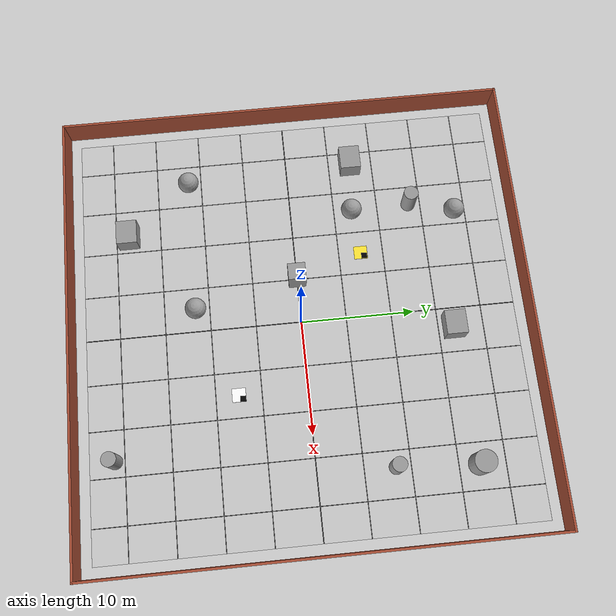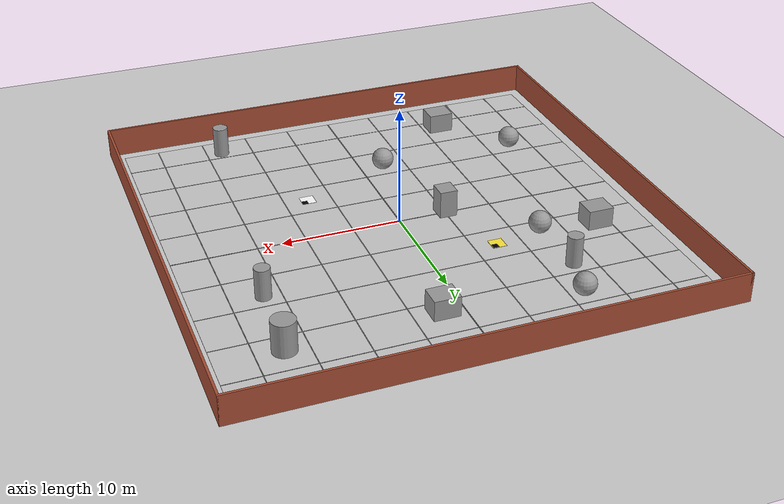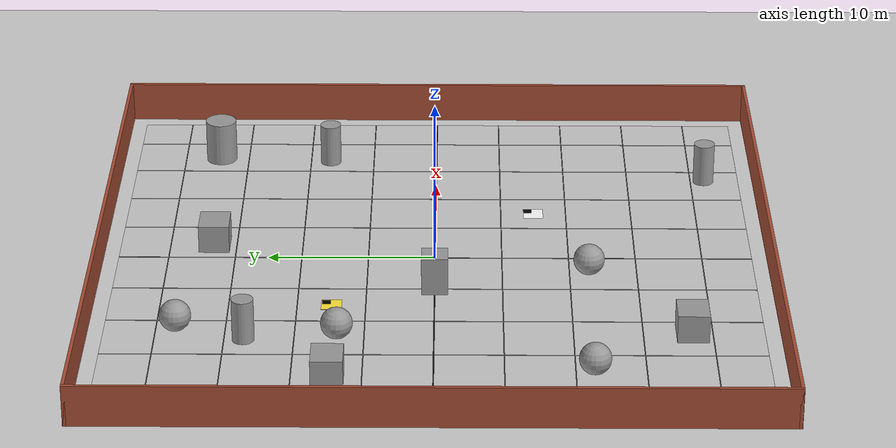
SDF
<sdf version="1.7">
 <world name="default">
  <light name="sun" type="directional">
   <cast_shadows>0</cast_shadows>
   <pose>0 0 10 0 -0 0</pose>
   <diffuse>0.8 0.8 0.8 1</diffuse>
   <specular>0.2 0.2 0.2 1</specular>
   <direction>-0.5 0.1 -0.9</direction>
   <attenuation><range>10</range></attenuation>
   <spot><inner_angle>0</inner_angle><outer_angle>0</outer_angle><falloff>0</falloff></spot>
  </light>
  <physics name="default_physics" default="1" type="ode">
   <max_step_size>0.004</max_step_size>
   <real_time_factor>1</real_time_factor>
   <real_time_update_rate>250</real_time_update_rate>
  </physics>
  <scene><ambient>0.4 0.4 0.4 1</ambient><background>0.7 0.7 0.7 1</background><shadows>0</shadows></scene>
  <gravity>0 0 -9.8</gravity>
  <model name="ground_plane">
   <static>1</static>
   <link name="link">
    <collision name="collision">
     <geometry><plane><normal>0 0 1</normal><size>200 200</size></plane></geometry>
    </collision>
    <visual name="visual">
     <cast_shadows>0</cast_shadows>
     <geometry><plane><normal>0 0 1</normal><size>200 200</size></plane></geometry>
     <material>
      <script><uri>file://media/materials/scripts/gazebo.material</uri><name>Gazebo/Grey</name></script>
     </material>
    </visual>
   </link>
  </model>
  <model name="vins_floor">
   <static>1</static>
   <pose>0 0 0.015 0 -0 0</pose>
   <link name="link">
    <collision name="collision"><geometry><box><size>38 38 0.02</size></box></geometry></collision>
    <visual name="visual">
     <cast_shadows>0</cast_shadows>
     <geometry><box><size>38 38 0.02</size></box></geometry>
     <material>
      <ambient>0.82 0.82 0.82 1</ambient>
      <diffuse>0.78 0.78 0.78 1</diffuse>
      <specular>0.02 0.02 0.02 1</specular>
     </material>
    </visual>
   </link>
  </model>
  <model name="floor_grid_lines">
   <static>1</static>
   <link name="xline_y_-16">
    <pose>0 -16 0.03 0 -0 0</pose>
    <collision name="c"><geometry><box><size>38 0.06 0.01</size></box></geometry></collision>
    <visual name="v">
     <geometry><box><size>38 0.06 0.01</size></box></geometry>
     <material><ambient>0.05 0.05 0.05 1</ambient><diffuse>0.05 0.05 0.05 1</diffuse></material>
    </visual>
   </link>
   <link name="xline_y_-12">
    <pose>0 -12 0.03 0 -0 0</pose>
    <collision name="c"><geometry><box><size>38 0.06 0.01</size></box></geometry></collision>
    <visual name="v">
     <geometry><box><size>38 0.06 0.01</size></box></geometry>
     <material><ambient>0.05 0.05 0.05 1</ambient><diffuse>0.05 0.05 0.05 1</diffuse></material>
    </visual>
   </link>
   <link name="xline_y_-8">
    <pose>0 -8 0.03 0 -0 0</pose>
    <collision name="c"><geometry><box><size>38 0.06 0.01</size></box></geometry></collision>
    <visual name="v">
     <geometry><box><size>38 0.06 0.01</size></box></geometry>
     <material><ambient>0.05 0.05 0.05 1</ambient><diffuse>0.05 0.05 0.05 1</diffuse></material>
    </visual>
   </link>
   <link name="xline_y_-4">
    <pose>0 -4 0.03 0 -0 0</pose>
    <collision name="c"><geometry><box><size>38 0.06 0.01</size></box></geometry></collision>
    <visual name="v">
     <geometry><box><size>38 0.06 0.01</size></box></geometry>
     <material><ambient>0.05 0.05 0.05 1</ambient><diffuse>0.05 0.05 0.05 1</diffuse></material>
    </visual>
   </link>
   <link name="xline_y_0">
    <pose>0 0 0.03 0 -0 0</pose>
    <collision name="c"><geometry><box><size>38 0.08 0.012</size></box></geometry></collision>
    <visual name="v">
     <geometry><box><size>38 0.08 0.012</size></box></geometry>
     <material><ambient>0.02 0.02 0.02 1</ambient><diffuse>0.02 0.02 0.02 1</diffuse></material>
    </visual>
   </link>
   <link name="xline_y_4">
    <pose>0 4 0.03 0 -0 0</pose>
    <collision name="c"><geometry><box><size>38 0.06 0.01</size></box></geometry></collision>
    <visual name="v">
     <geometry><box><size>38 0.06 0.01</size></box></geometry>
     <material><ambient>0.05 0.05 0.05 1</ambient><diffuse>0.05 0.05 0.05 1</diffuse></material>
    </visual>
   </link>
   <link name="xline_y_8">
    <pose>0 8 0.03 0 -0 0</pose>
    <collision name="c"><geometry><box><size>38 0.06 0.01</size></box></geometry></collision>
    <visual name="v">
     <geometry><box><size>38 0.06 0.01</size></box></geometry>
     <material><ambient>0.05 0.05 0.05 1</ambient><diffuse>0.05 0.05 0.05 1</diffuse></material>
    </visual>
   </link>
   <link name="xline_y_12">
    <pose>0 12 0.03 0 -0 0</pose>
    <collision name="c"><geometry><box><size>38 0.06 0.01</size></box></geometry></collision>
    <visual name="v">
     <geometry><box><size>38 0.06 0.01</size></box></geometry>
     <material><ambient>0.05 0.05 0.05 1</ambient><diffuse>0.05 0.05 0.05 1</diffuse></material>
    </visual>
   </link>
   <link name="xline_y_16">
    <pose>0 16 0.03 0 -0 0</pose>
    <collision name="c"><geometry><box><size>38 0.06 0.01</size></box></geometry></collision>
    <visual name="v">
     <geometry><box><size>38 0.06 0.01</size></box></geometry>
     <material><ambient>0.05 0.05 0.05 1</ambient><diffuse>0.05 0.05 0.05 1</diffuse></material>
    </visual>
   </link>
   <link name="yline_x_-16">
    <pose>-16 0 0.03 0 -0 0</pose>
    <collision name="c"><geometry><box><size>0.06 38 0.01</size></box></geometry></collision>
    <visual name="v">
     <geometry><box><size>0.06 38 0.01</size></box></geometry>
     <material><ambient>0.05 0.05 0.05 1</ambient><diffuse>0.05 0.05 0.05 1</diffuse></material>
    </visual>
   </link>
   <link name="yline_x_-12">
    <pose>-12 0 0.03 0 -0 0</pose>
    <collision name="c"><geometry><box><size>0.06 38 0.01</size></box></geometry></collision>
    <visual name="v">
     <geometry><box><size>0.06 38 0.01</size></box></geometry>
     <material><ambient>0.05 0.05 0.05 1</ambient><diffuse>0.05 0.05 0.05 1</diffuse></material>
    </visual>
   </link>
   <link name="yline_x_-8">
    <pose>-8 0 0.03 0 -0 0</pose>
    <collision name="c"><geometry><box><size>0.06 38 0.01</size></box></geometry></collision>
    <visual name="v">
     <geometry><box><size>0.06 38 0.01</size></box></geometry>
     <material><ambient>0.05 0.05 0.05 1</ambient><diffuse>0.05 0.05 0.05 1</diffuse></material>
    </visual>
   </link>
   <link name="yline_x_-4">
    <pose>-4 0 0.03 0 -0 0</pose>
    <collision name="c"><geometry><box><size>0.06 38 0.01</size></box></geometry></collision>
    <visual name="v">
     <geometry><box><size>0.06 38 0.01</size></box></geometry>
     <material><ambient>0.05 0.05 0.05 1</ambient><diffuse>0.05 0.05 0.05 1</diffuse></material>
    </visual>
   </link>
   <link name="yline_x_0">
    <pose>0 0 0.03 0 -0 0</pose>
    <collision name="c"><geometry><box><size>0.08 38 0.012</size></box></geometry></collision>
    <visual name="v">
     <geometry><box><size>0.08 38 0.012</size></box></geometry>
     <material><ambient>0.02 0.02 0.02 1</ambient><diffuse>0.02 0.02 0.02 1</diffuse></material>
    </visual>
   </link>
   <link name="yline_x_4">
    <pose>4 0 0.03 0 -0 0</pose>
    <collision name="c"><geometry><box><size>0.06 38 0.01</size></box></geometry></collision>
    <visual name="v">
     <geometry><box><size>0.06 38 0.01</size></box></geometry>
     <material><ambient>0.05 0.05 0.05 1</ambient><diffuse>0.05 0.05 0.05 1</diffuse></material>
    </visual>
   </link>
   <link name="yline_x_8">
    <pose>8 0 0.03 0 -0 0</pose>
    <collision name="c"><geometry><box><size>0.06 38 0.01</size></box></geometry></collision>
    <visual name="v">
     <geometry><box><size>0.06 38 0.01</size></box></geometry>
     <material><ambient>0.05 0.05 0.05 1</ambient><diffuse>0.05 0.05 0.05 1</diffuse></material>
    </visual>
   </link>
   <link name="yline_x_12">
    <pose>12 0 0.03 0 -0 0</pose>
    <collision name="c"><geometry><box><size>0.06 38 0.01</size></box></geometry></collision>
    <visual name="v">
     <geometry><box><size>0.06 38 0.01</size></box></geometry>
     <material><ambient>0.05 0.05 0.05 1</ambient><diffuse>0.05 0.05 0.05 1</diffuse></material>
    </visual>
   </link>
   <link name="yline_x_16">
    <pose>16 0 0.03 0 -0 0</pose>
    <collision name="c"><geometry><box><size>0.06 38 0.01</size></box></geometry></collision>
    <visual name="v">
     <geometry><box><size>0.06 38 0.01</size></box></geometry>
     <material><ambient>0.05 0.05 0.05 1</ambient><diffuse>0.05 0.05 0.05 1</diffuse></material>
    </visual>
   </link>
  </model>
  <model name="floor_markers">
   <static>1</static>
   <link name="m1">
    <pose>6 -6 0.031 0 -0 0</pose>
    <collision name="c"><geometry><box><size>1.2 1.2 0.01</size></box></geometry></collision>
    <visual name="v">
     <geometry><box><size>1.2 1.2 0.01</size></box></geometry>
     <material><ambient>1 1 1 1</ambient><diffuse>1 1 1 1</diffuse></material>
    </visual>
   </link>
   <link name="m2">
    <pose>6.35 -5.65 0.032 0 -0 0</pose>
    <collision name="c"><geometry><box><size>0.5 0.5 0.01</size></box></geometry></collision>
    <visual name="v">
     <geometry><box><size>0.5 0.5 0.01</size></box></geometry>
     <material><ambient>0 0 0 1</ambient><diffuse>0 0 0 1</diffuse></material>
    </visual>
   </link>
   <link name="m3">
    <pose>-6 6 0.031 0 -0 0</pose>
    <collision name="c"><geometry><box><size>1.2 1.2 0.01</size></box></geometry></collision>
    <visual name="v">
     <geometry><box><size>1.2 1.2 0.01</size></box></geometry>
     <material><ambient>1 0.9 0.2 1</ambient><diffuse>1 0.9 0.2 1</diffuse></material>
    </visual>
   </link>
   <link name="m4">
    <pose>-5.7 6.3 0.032 0 -0 0</pose>
    <collision name="c"><geometry><box><size>0.5 0.5 0.01</size></box></geometry></collision>
    <visual name="v">
     <geometry><box><size>0.5 0.5 0.01</size></box></geometry>
     <material><ambient>0 0 0 1</ambient><diffuse>0 0 0 1</diffuse></material>
    </visual>
   </link>
  </model>
  <model name="walls">
   <static>1</static>
   <link name="wall_n">
    <pose>0 20 1.25 0 -0 0</pose>
    <collision name="collision"><geometry><box><size>40.2 0.2 2.5</size></box></geometry></collision>
    <visual name="visual">
     <geometry><box><size>40.2 0.2 2.5</size></box></geometry>
     <material>
      <script><uri>file://media/materials/scripts/gazebo.material</uri><name>Gazebo/Bricks</name></script>
     </material>
    </visual>
   </link>
   <link name="wall_s">
    <pose>0 -20 1.25 0 -0 0</pose>
    <collision name="collision"><geometry><box><size>40.2 0.2 2.5</size></box></geometry></collision>
    <visual name="visual">
     <geometry><box><size>40.2 0.2 2.5</size></box></geometry>
     <material>
      <script><uri>file://media/materials/scripts/gazebo.material</uri><name>Gazebo/Bricks</name></script>
     </material>
    </visual>
   </link>
   <link name="wall_e">
    <pose>20 0 1.25 0 -0 0</pose>
    <collision name="collision"><geometry><box><size>0.2 40.2 2.5</size></box></geometry></collision>
    <visual name="visual">
     <geometry><box><size>0.2 40.2 2.5</size></box></geometry>
     <material>
      <script><uri>file://media/materials/scripts/gazebo.material</uri><name>Gazebo/Bricks</name></script>
     </material>
    </visual>
   </link>
   <link name="wall_w">
    <pose>-20 0 1.25 0 -0 0</pose>
    <collision name="collision"><geometry><box><size>0.2 40.2 2.5</size></box></geometry></collision>
    <visual name="visual">
     <geometry><box><size>0.2 40.2 2.5</size></box></geometry>
     <material>
      <script><uri>file://media/materials/scripts/gazebo.material</uri><name>Gazebo/Bricks</name></script>
     </material>
    </visual>
   </link>
  </model>
  <magnetic_field>6e-06 2.3e-05 -4.2e-05</magnetic_field>
  <atmosphere type="adiabatic"/>
  <spherical_coordinates>
   <surface_model>EARTH_WGS84</surface_model>
   <latitude_deg>0</latitude_deg>
   <longitude_deg>0</longitude_deg>
   <elevation>0</elevation>
   <heading_deg>0</heading_deg>
  </spherical_coordinates>
  <model name="unit_cylinder">
   <pose>13.4113 6.73588 1.33277 1e-06 -1.3e-05 0.011641</pose>
   <link name="link">
    <inertial>
     <mass>1</mass>
     <inertia><ixx>0.145833</ixx><ixy>0</ixy><ixz>0</ixz><iyy>0.145833</iyy><iyz>0</iyz><izz>0.125</izz></inertia>
    </inertial>
    <collision name="collision">
     <geometry><cylinder><radius>0.638485</radius><length>2.61552</length></cylinder></geometry>
    </collision>
    <visual name="visual">
     <geometry><cylinder><radius>0.638485</radius><length>2.61552</length></cylinder></geometry>
     <material>
      <script><name>Gazebo/Grey</name><uri>file://media/materials/scripts/gazebo.material</uri></script>
     </material>
    </visual>
   </link>
  </model>
  <model name="unit_box">
   <pose>1.70387 13.3192 0.868546 -8e-05 0 -0.000171</pose>
   <link name="link">
    <inertial>
     <mass>1</mass>
     <inertia>
      <ixx>0.166667</ixx>
      <ixy>0</ixy>
      <ixz>0</ixz>
      <iyy>0.166667</iyy>
      <iyz>0</iyz>
      <izz>0.166667</izz>
     </inertia>
    </inertial>
    <collision name="collision"><geometry><box><size>2.13124 1.83512 1.68724</size></box></geometry></collision>
    <visual name="visual">
     <geometry><box><size>2.13124 1.83512 1.68724</size></box></geometry>
     <material>
      <script><name>Gazebo/Grey</name><uri>file://media/materials/scripts/gazebo.material</uri></script>
     </material>
    </visual>
   </link>
  </model>
  <model name="unit_sphere">
   <pose>-9.9458 5.55924 0.95399 0 -0 0</pose>
   <link name="link">
    <inertial>
     <mass>1</mass>
     <inertia><ixx>0.1</ixx><ixy>0</ixy><ixz>0</ixz><iyy>0.1</iyy><iyz>0</iyz><izz>0.1</izz></inertia>
    </inertial>
    <collision name="collision"><geometry><sphere><radius>0.92899</radius></sphere></geometry></collision>
    <visual name="visual">
     <geometry><sphere><radius>0.92899</radius></sphere></geometry>
     <material>
      <script><name>Gazebo/Grey</name><uri>file://media/materials/scripts/gazebo.material</uri></script>
     </material>
    </visual>
   </link>
  </model>
  <model name="unit_cylinder_clone">
   <pose>10.693 -16.8112 1.33278 2.8e-05 4e-06 0.006811</pose>
   <link name="link">
    <inertial>
     <mass>1</mass>
     <inertia><ixx>0.145833</ixx><ixy>0</ixy><ixz>0</ixz><iyy>0.145833</iyy><iyz>0</iyz><izz>0.125</izz></inertia>
    </inertial>
    <collision name="collision">
     <geometry><cylinder><radius>0.638485</radius><length>2.61552</length></cylinder></geometry>
    </collision>
    <visual name="visual">
     <geometry><cylinder><radius>0.638485</radius><length>2.61552</length></cylinder></geometry>
     <material>
      <script><name>Gazebo/Grey</name><uri>file://media/materials/scripts/gazebo.material</uri></script>
     </material>
    </visual>
   </link>
  </model>
  <model name="unit_cylinder_clone_0">
   <pose>-10.2585 10.8868 1.33275 1.7e-05 2e-06 0.010713</pose>
   <link name="link">
    <inertial>
     <mass>1</mass>
     <inertia><ixx>0.145833</ixx><ixy>0</ixy><ixz>0</ixz><iyy>0.145833</iyy><iyz>0</iyz><izz>0.125</izz></inertia>
    </inertial>
    <collision name="collision">
     <geometry><cylinder><radius>0.638485</radius><length>2.61552</length></cylinder></geometry>
    </collision>
    <visual name="visual">
     <geometry><cylinder><radius>0.638485</radius><length>2.61552</length></cylinder></geometry>
     <material>
      <script><name>Gazebo/Grey</name><uri>file://media/materials/scripts/gazebo.material</uri></script>
     </material>
    </visual>
   </link>
  </model>
  <model name="unit_box_clone">
   <pose>-14.8065 5.91924 0.86862 -5e-06 -0 -0.000169</pose>
   <link name="link">
    <inertial>
     <mass>1</mass>
     <inertia>
      <ixx>0.166667</ixx>
      <ixy>0</ixy>
      <ixz>0</ixz>
      <iyy>0.166667</iyy>
      <iyz>0</iyz>
      <izz>0.166667</izz>
     </inertia>
    </inertial>
    <collision name="collision"><geometry><box><size>2.13124 1.83512 1.68724</size></box></geometry></collision>
    <visual name="visual">
     <geometry><box><size>2.13124 1.83512 1.68724</size></box></geometry>
     <material>
      <script><name>Gazebo/Grey</name><uri>file://media/materials/scripts/gazebo.material</uri></script>
     </material>
    </visual>
   </link>
  </model>
  <model name="unit_box_clone_0">
   <pose>-9.41043 -14.8116 0.868621 3e-06 1e-06 -0.000165</pose>
   <link name="link">
    <inertial>
     <mass>1</mass>
     <inertia>
      <ixx>0.166667</ixx>
      <ixy>0</ixy>
      <ixz>0</ixz>
      <iyy>0.166667</iyy>
      <iyz>0</iyz>
      <izz>0.166667</izz>
     </inertia>
    </inertial>
    <collision name="collision"><geometry><box><size>2.13124 1.83512 1.68724</size></box></geometry></collision>
    <visual name="visual">
     <geometry><box><size>2.13124 1.83512 1.68724</size></box></geometry>
     <material>
      <script><name>Gazebo/Grey</name><uri>file://media/materials/scripts/gazebo.material</uri></script>
     </material>
    </visual>
   </link>
  </model>
  <model name="unit_cylinder_0">
   <pose>13.8381 13.726 1.36393 -1.6e-05 4.3e-05 0.005759</pose>
   <link name="link">
    <inertial>
     <mass>1</mass>
     <inertia><ixx>0.145833</ixx><ixy>0</ixy><ixz>0</ixz><iyy>0.145833</iyy><iyz>0</iyz><izz>0.125</izz></inertia>
    </inertial>
    <collision name="collision">
     <geometry><cylinder><radius>0.953695</radius><length>2.67778</length></cylinder></geometry>
    </collision>
    <visual name="visual">
     <geometry><cylinder><radius>0.953695</radius><length>2.67778</length></cylinder></geometry>
     <material>
      <script><name>Gazebo/Grey</name><uri>file://media/materials/scripts/gazebo.material</uri></script>
     </material>
    </visual>
   </link>
  </model>
  <model name="unit_sphere_clone">
   <pose>-14.0139 -9.07603 0.953988 0 -0 0</pose>
   <link name="link">
    <inertial>
     <mass>1</mass>
     <inertia><ixx>0.1</ixx><ixy>0</ixy><ixz>0</ixz><iyy>0.1</iyy><iyz>0</iyz><izz>0.1</izz></inertia>
    </inertial>
    <collision name="collision"><geometry><sphere><radius>0.928988</radius></sphere></geometry></collision>
    <visual name="visual">
     <geometry><sphere><radius>0.928988</radius></sphere></geometry>
     <material>
      <script><name>Gazebo/Grey</name><uri>file://media/materials/scripts/gazebo.material</uri></script>
     </material>
    </visual>
   </link>
  </model>
  <model name="unit_sphere_clone_0">
   <pose>-9.09571 14.8541 0.953988 0 -0 0</pose>
   <link name="link">
    <inertial>
     <mass>1</mass>
     <inertia><ixx>0.1</ixx><ixy>0</ixy><ixz>0</ixz><iyy>0.1</iyy><iyz>0</iyz><izz>0.1</izz></inertia>
    </inertial>
    <collision name="collision"><geometry><sphere><radius>0.928988</radius></sphere></geometry></collision>
    <visual name="visual">
     <geometry><sphere><radius>0.928988</radius></sphere></geometry>
     <material>
      <script><name>Gazebo/Grey</name><uri>file://media/materials/scripts/gazebo.material</uri></script>
     </material>
    </visual>
   </link>
  </model>
  <model name="unit_sphere_clone_1">
   <pose>-1.90466 -9.15391 0.953988 0 -0 0</pose>
   <link name="link">
    <inertial>
     <mass>1</mass>
     <inertia><ixx>0.1</ixx><ixy>0</ixy><ixz>0</ixz><iyy>0.1</iyy><iyz>0</iyz><izz>0.1</izz></inertia>
    </inertial>
    <collision name="collision"><geometry><sphere><radius>0.928988</radius></sphere></geometry></collision>
    <visual name="visual">
     <geometry><sphere><radius>0.928988</radius></sphere></geometry>
     <material>
      <script><name>Gazebo/Grey</name><uri>file://media/materials/scripts/gazebo.material</uri></script>
     </material>
    </visual>
   </link>
  </model>
  <model name="unit_box_0">
   <pose>-4.00945 -0.00077 1.19845 1.57078 -1.1e-05 0.000255</pose>
   <link name="link">
    <inertial>
     <mass>1</mass>
     <inertia>
      <ixx>0.166667</ixx>
      <ixy>0</ixy>
      <ixz>0</ixz>
      <iyy>0.166667</iyy>
      <iyz>0</iyz>
      <izz>0.166667</izz>
     </inertia>
    </inertial>
    <collision name="collision"><geometry><box><size>1.47147 2.32488 1.55211</size></box></geometry></collision>
    <visual name="visual">
     <geometry><box><size>1.47147 2.32488 1.55211</size></box></geometry>
     <material>
      <script><name>Gazebo/Grey</name><uri>file://media/materials/scripts/gazebo.material</uri></script>
     </material>
    </visual>
   </link>
  </model>
 </world>
</sdf>
